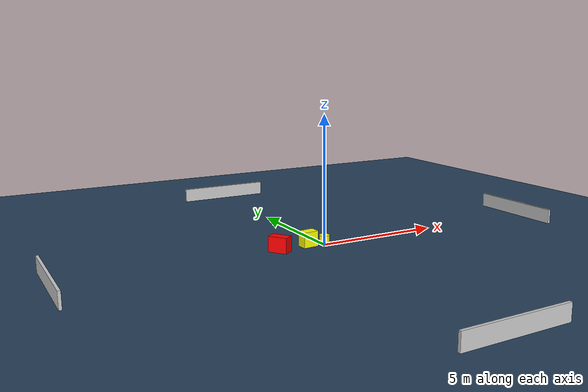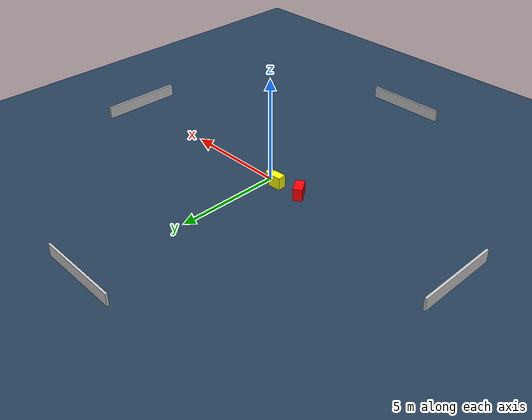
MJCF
<?xml version="1.0" ?>
<mujoco model="generated_environment">
  <option timestep="0.01" integrator="RK4" cone="elliptic"/>
  <default>
    <geom density="1"/>
  </default>
  <asset>
    <texture builtin="gradient" height="3072" name="skybox" rgb1="0.3 0.5 0.7" rgb2="0 0 0" type="skybox" width="512"/>
    <texture builtin="checker" height="300" name="groundplane" rgb1="0.2 0.3 0.4" rgb2="0.1 0.2 0.3" type="2d" width="300"/>
    <material name="groundplane" reflectance="0.2" texrepeat="5 5" texture="groundplane"/>
  </asset>
  <worldbody>
    <light dir="0 0 -1" directional="true" pos="0 0 1.5"/>
    <geom condim="3" friction="0.5 0.005 0.001" material="groundplane" name="floor" pos="0 0 0" size="0 0 0.05" type="plane"/>
    <body name="walls">
      <geom name="wall_1" condim="4" pos="-10.0 0.0 0.3" rgba="0.800000011920929 0.800000011920929 0.800000011920929 1.0" size="0.05 2.0 0.3" type="box"/>
      <geom name="wall_2" condim="4" pos="10.0 0.0 0.3" rgba="0.800000011920929 0.800000011920929 0.800000011920929 1.0" size="0.05 2.0 0.3" type="box"/>
      <geom name="wall_3" condim="4" pos="0.0 -10.0 0.3" rgba="0.800000011920929 0.800000011920929 0.800000011920929 1.0" size="2.0 0.05 0.3" type="box"/>
      <geom name="wall_4" condim="4" pos="0.0 10.0 0.3" rgba="0.800000011920929 0.800000011920929 0.800000011920929 1.0" size="2.0 0.05 0.3" type="box"/>
    </body>
    <body name="robot">
      <joint name="joint_x" type="slide" pos="0 0 0" axis="1 0 0"/>
      <joint name="joint_y" type="slide" pos="0 0 0" axis="0 1 0"/>
      <geom name="robot" type="cylinder" pos="0.0 0.0 0.2" size="0.2 0.2 0.0" mass="5.0" friction="1.0 0.005 0.0001" condim="4" rgba="1.0 1.0 0.0 1.0"/>
    </body>
    <body name="obstacle_1_movable">
      <geom name="obstacle_1_movable" condim="4" pos="-0.6010892788240026 0.1823014357370655 0.3" euler="0 0 94.39481226063005" friction="0.0 0.005 0.001" rgba="1.0 1.0 0.0 1.0" size="0.20575977240404741 0.3120030567198349 0.3" type="box" mass="0.1"/>
      <joint type="free"/>
    </body>
    <body name="obstacle_2_static">
      <geom name="obstacle_2_static" condim="4" pos="-1.8731133645326001 0.06843518515387538 0.3" euler="0 0 304.1182040921644" friction="0.0 0.005 0.001" rgba="1.0 0.0 0.0 1.0" size="0.3771093820231669 0.21106407759784443 0.3" type="box"/>
    </body>
  </worldbody>
  <actuator>
    <motor name="actuator_x" joint="joint_x" gear="1" ctrlrange="-1 1"/>
    <motor name="actuator_y" joint="joint_y" gear="1" ctrlrange="-1 1"/>
  </actuator>
</mujoco>
